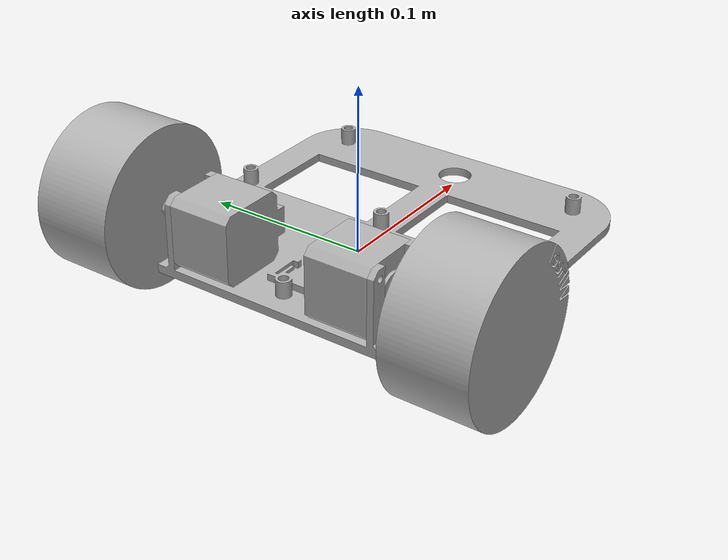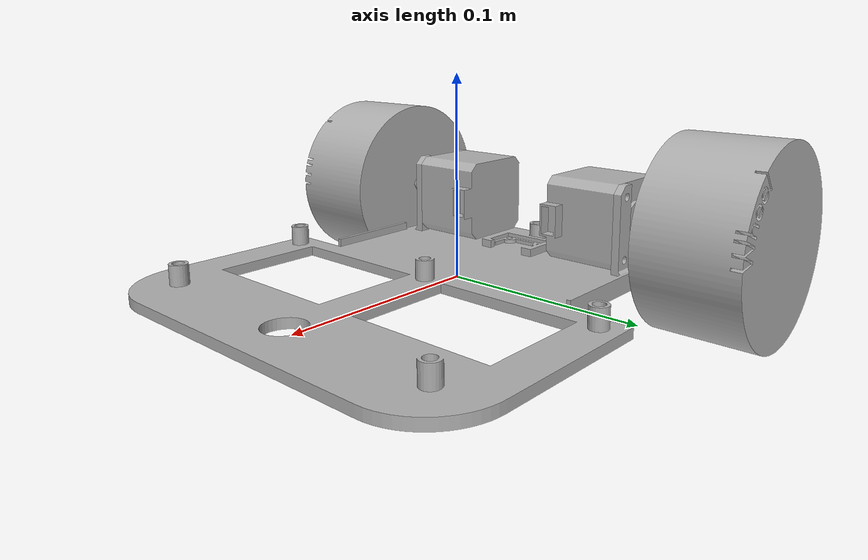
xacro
<?xml version="1.0" ?>
<robot name="robot_model_export" xmlns:xacro="http://www.ros.org/wiki/xacro">

<xacro:include filename="$(find robot_model_export_description)/urdf/materials.xacro" />
<link name="base_link">
  <inertial>
    <origin xyz="0.01124701395298498 0.0002366333255408849 0.0035132919404299713" rpy="0 0 0"/>
    <mass value="1.4695442239084902"/>
    <inertia ixx="0.006044" iyy="0.006199" izz="0.012165" ixy="-1.6e-05" iyz="1e-06" ixz="9.4e-05"/>
  </inertial>
  <visual>
    <origin xyz="0 0 0" rpy="0 0 0"/>
    <geometry>
      <mesh filename="file://$(find robot_model_export_description)/meshes/base_link.stl" scale="0.001 0.001 0.001"/>
    </geometry>
    <material name="silver"/>
  </visual>
  <collision>
    <origin xyz="0 0 0" rpy="0 0 0"/>
    <geometry>
      <mesh filename="file://$(find robot_model_export_description)/meshes/base_link.stl" scale="0.001 0.001 0.001"/>
    </geometry>
  </collision>
</link>

<link name="Left_Motor_1">
  <inertial>
    <origin xyz="0.00010028588786138021 -0.01867209415313599 -2.0602736909916541e-07" rpy="0 0 0"/>
    <mass value="0.5347120284089587"/>
    <inertia ixx="0.000145" iyy="0.000153" izz="0.000146" ixy="1e-06" iyz="0.0" ixz="0.0"/>
  </inertial>
  <visual>
    <origin xyz="0.060312 -0.09339 -0.02715" rpy="0 0 0"/>
    <geometry>
      <mesh filename="file://$(find robot_model_export_description)/meshes/Left_Motor_1.stl" scale="0.001 0.001 0.001"/>
    </geometry>
    <material name="silver"/>
  </visual>
  <collision>
    <origin xyz="0.060312 -0.09339 -0.02715" rpy="0 0 0"/>
    <geometry>
      <mesh filename="file://$(find robot_model_export_description)/meshes/Left_Motor_1.stl" scale="0.001 0.001 0.001"/>
    </geometry>
  </collision>
</link>

<link name="Left_Wheel_Attachment_1">
  <inertial>
    <origin xyz="1.3665929755879436e-08 -0.005408521171114858 3.942507858563024e-05" rpy="0 0 0"/>
    <mass value="0.006547683530071302"/>
    <inertia ixx="1e-06" iyy="0.0" izz="1e-06" ixy="-0.0" iyz="0.0" ixz="0.0"/>
  </inertial>
  <visual>
    <origin xyz="0.060312 -0.11689 -0.02715" rpy="0 0 0"/>
    <geometry>
      <mesh filename="file://$(find robot_model_export_description)/meshes/Left_Wheel_Attachment_1.stl" scale="0.001 0.001 0.001"/>
    </geometry>
    <material name="silver"/>
  </visual>
  <collision>
    <origin xyz="0.060312 -0.11689 -0.02715" rpy="0 0 0"/>
    <geometry>
      <mesh filename="file://$(find robot_model_export_description)/meshes/Left_Wheel_Attachment_1.stl" scale="0.001 0.001 0.001"/>
    </geometry>
  </collision>
</link>

<link name="Left_Wheel_1">
  <inertial>
    <origin xyz="-6.742943193274037e-05 0.014977294887082299 -3.2803523729064976e-05" rpy="0 0 0"/>
    <mass value="2.7743069866386367"/>
    <inertia ixx="0.002143" iyy="0.003129" izz="0.002138" ixy="4e-06" iyz="2e-06" ixz="3e-06"/>
  </inertial>
  <visual>
    <origin xyz="0.060312 -0.12689 -0.02715" rpy="0 0 0"/>
    <geometry>
      <mesh filename="file://$(find robot_model_export_description)/meshes/Left_Wheel_1.stl" scale="0.001 0.001 0.001"/>
    </geometry>
    <material name="silver"/>
  </visual>
  <collision>
    <origin xyz="0.060312 -0.12689 -0.02715" rpy="0 0 0"/>
    <geometry>
      <cylinder radius="0.095" length="0.010"/>
    </geometry>
  </collision>
</link>

<link name="Right_Motor_Mirror___1__1">
  <inertial>
    <origin xyz="0.0001002858878613247 0.01867139493931458 -2.0602736909569597e-07" rpy="0 0 0"/>
    <mass value="0.5347120284089587"/>
    <inertia ixx="0.000145" iyy="0.000153" izz="0.000146" ixy="-1e-06" iyz="-0.0" ixz="0.0"/>
  </inertial>
  <visual>
    <origin xyz="0.060312 0.09261 -0.02715" rpy="0 0 0"/>
    <geometry>
      <mesh filename="file://$(find robot_model_export_description)/meshes/Right_Motor_Mirror___1__1.stl" scale="0.001 0.001 0.001"/>
    </geometry>
    <material name="silver"/>
  </visual>
  <collision>
    <origin xyz="0.060312 0.09261 -0.02715" rpy="0 0 0"/>
    <geometry>
      <mesh filename="file://$(find robot_model_export_description)/meshes/Right_Motor_Mirror___1__1.stl" scale="0.001 0.001 0.001"/>
    </geometry>
  </collision>
</link>

<link name="Right_Wheel_Attachment_Mirror__1">
  <inertial>
    <origin xyz="1.366592969342939e-08 0.00540782195729346 3.942507858565106e-05" rpy="0 0 0"/>
    <mass value="0.006547683530071294"/>
    <inertia ixx="1e-06" iyy="0.0" izz="1e-06" ixy="0.0" iyz="-0.0" ixz="0.0"/>
  </inertial>
  <visual>
    <origin xyz="0.060312 0.11611 -0.02715" rpy="0 0 0"/>
    <geometry>
      <mesh filename="file://$(find robot_model_export_description)/meshes/Right_Wheel_Attachment_Mirror__1.stl" scale="0.001 0.001 0.001"/>
    </geometry>
    <material name="silver"/>
  </visual>
  <collision>
    <origin xyz="0.060312 0.11611 -0.02715" rpy="0 0 0"/>
    <geometry>
      <mesh filename="file://$(find robot_model_export_description)/meshes/Right_Wheel_Attachment_Mirror__1.stl" scale="0.001 0.001 0.001"/>
    </geometry>
  </collision>
</link>

<link name="Right_Wheel_Mirror__1">
  <inertial>
    <origin xyz="-6.742943193280282e-05 -0.014977994100903697 -3.28035237290511e-05" rpy="0 0 0"/>
    <mass value="2.7743069866386367"/>
    <inertia ixx="0.002143" iyy="0.003129" izz="0.002138" ixy="-4e-06" iyz="-2e-06" ixz="3e-06"/>
  </inertial>
  <visual>
    <origin xyz="0.060312 0.12611 -0.02715" rpy="0 0 0"/>
    <geometry>
      <mesh filename="file://$(find robot_model_export_description)/meshes/Right_Wheel_Mirror__1.stl" scale="0.001 0.001 0.001"/>
    </geometry>
    <material name="silver"/>
  </visual>
  <collision>
    <origin xyz="0.060312 0.12611 -0.02715" rpy="0 0 0"/>
    <geometry>
      <cylinder radius="0.095" length="0.010"/>
    </geometry>
  </collision>
</link>

<joint name="Rigid 16" type="fixed">
  <origin xyz="-0.060312 0.09339 0.02715" rpy="0 0 0"/>
  <parent link="base_link"/>
  <child link="Left_Motor_1"/>
</joint>

<joint name="Revolute 17" type="continuous">
  <origin xyz="0.0 0.0235 0.0" rpy="0 0 0"/>
  <parent link="Left_Motor_1"/>
  <child link="Left_Wheel_Attachment_1"/>
  <axis xyz="0.0 1.0 0.0"/>
</joint>

<joint name="Rigid 18" type="fixed">
  <origin xyz="0.0 0.01 0.0" rpy="0 0 0"/>
  <parent link="Left_Wheel_Attachment_1"/>
  <child link="Left_Wheel_1"/>
</joint>

<joint name="Rigid 20" type="fixed">
  <origin xyz="-0.060312 -0.09261 0.02715" rpy="0 0 0"/>
  <parent link="base_link"/>
  <child link="Right_Motor_Mirror___1__1"/>
</joint>

<joint name="Revolute 21" type="continuous">
  <origin xyz="0.0 -0.0235 0.0" rpy="0 0 0"/>
  <parent link="Right_Motor_Mirror___1__1"/>
  <child link="Right_Wheel_Attachment_Mirror__1"/>
  <axis xyz="-0.0 -1.0 0.0"/>
</joint>

<joint name="Rigid 22" type="fixed">
  <origin xyz="0.0 -0.01 0.0" rpy="0 0 0"/>
  <parent link="Right_Wheel_Attachment_Mirror__1"/>
  <child link="Right_Wheel_Mirror__1"/>
</joint>

</robot>

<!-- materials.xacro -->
<robot name="robot_model_export" xmlns:xacro="http://www.ros.org/wiki/xacro" >

<material name="silver">
  <color rgba="0.700 0.700 0.700 1.000"/>
</material>

</robot>
